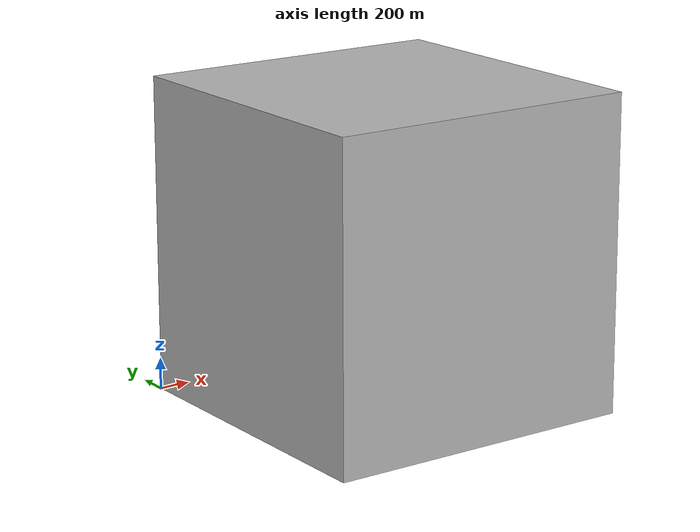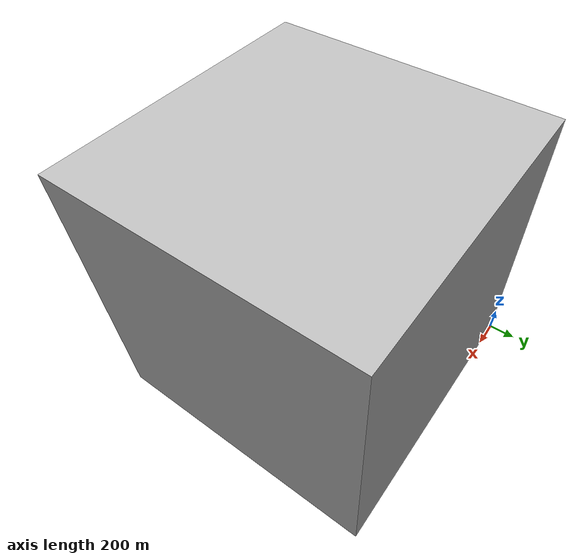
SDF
<?xml version="1.0"?>
<sdf version="1.10">
    <model name="fremm">
        <link name="base_link">
            <visual name="visual">
                <geometry>
                    <mesh>
                        <uri>model://fremm/meshes/fremm.dae</uri>
                        <scale>1 1 1</scale>
                    </mesh>
                </geometry>
            </visual>
            <sensor name="ais_sensor" type="custom" gz:type="ais">
                <update_rate>1</update_rate>
                <noise_sigma>0.01</noise_sigma>
                <noise_amplitude>0.01</noise_amplitude>
            </sensor>
        </link>
    </model>
</sdf>
